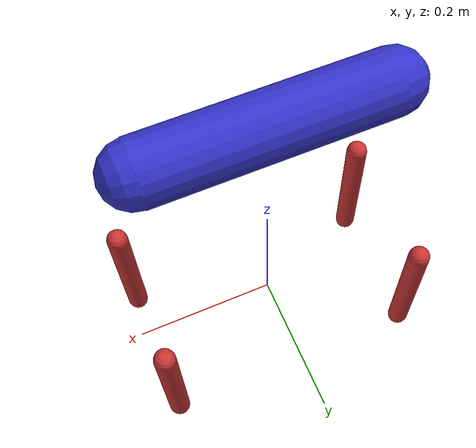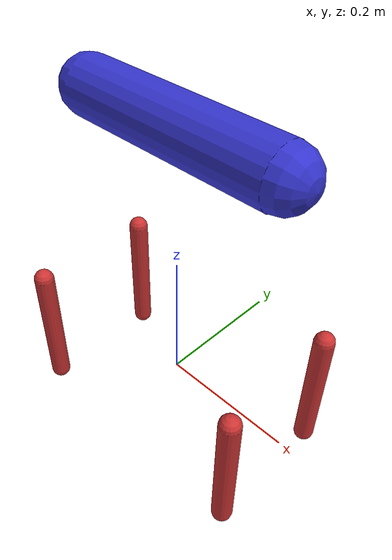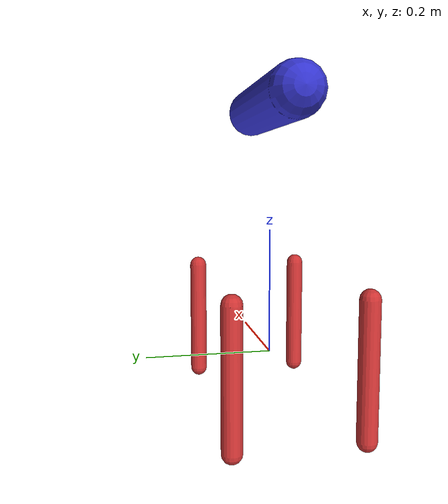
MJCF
<mujoco model="go2">
  <compiler angle="radian" meshdir="."/>
  <default>
    <joint armature="0.01" damping="0.1"/>
    <geom condim="3" margin="0.001"/>
  </default>
  <worldbody>
    <body name="base" pos="0 0 0.4">
      <inertial pos="0 0 0" mass="12.0" diaginertia="0.0355 0.0692 0.0804"/>
      <geom type="capsule" fromto="-0.15 0 0 0.15 0 0" size="0.04" rgba="0.2 0.2 0.8 1"/>
      <joint name="root_x" type="free" damping="0"/>

      <body name="FL_hip" pos="0.185 0.095 0">
        <inertial pos="0 0 0" mass="0.5" diaginertia="0.001 0.001 0.001"/>
        <joint name="FL_hip_joint" type="hinge" axis="1 0 0" range="-0.80 2.86" damping="0.5"/>
        <body name="FL_thigh" pos="0 0 -0.08">
          <inertial pos="0 0 -0.1" mass="1.0" diaginertia="0.005 0.005 0.001"/>
          <joint name="FL_thigh_joint" type="hinge" axis="0 1 0" range="-2.33 2.87" damping="0.8"/>
          <body name="FL_calf" pos="0 0 -0.2">
            <inertial pos="0 0 -0.1" mass="0.5" diaginertia="0.002 0.002 0.001"/>
            <joint name="FL_calf_joint" type="hinge" axis="0 1 0" range="-2.70 -0.46" damping="0.5"/>
            <geom type="capsule" fromto="0 0 0 0 0 -0.2" size="0.015" rgba="0.8 0.2 0.2 1"/>
          </body>
        </body>
      </body>

      <body name="FR_hip" pos="0.185 -0.095 0">
        <inertial pos="0 0 0" mass="0.5" diaginertia="0.001 0.001 0.001"/>
        <joint name="FR_hip_joint" type="hinge" axis="1 0 0" range="-0.80 2.86" damping="0.5"/>
        <body name="FR_thigh" pos="0 0 -0.08">
          <inertial pos="0 0 -0.1" mass="1.0" diaginertia="0.005 0.005 0.001"/>
          <joint name="FR_thigh_joint" type="hinge" axis="0 1 0" range="-2.33 2.87" damping="0.8"/>
          <body name="FR_calf" pos="0 0 -0.2">
            <inertial pos="0 0 -0.1" mass="0.5" diaginertia="0.002 0.002 0.001"/>
            <joint name="FR_calf_joint" type="hinge" axis="0 1 0" range="-2.70 -0.46" damping="0.5"/>
            <geom type="capsule" fromto="0 0 0 0 0 -0.2" size="0.015" rgba="0.8 0.2 0.2 1"/>
          </body>
        </body>
      </body>

      <body name="RL_hip" pos="-0.185 0.095 0">
        <inertial pos="0 0 0" mass="0.5" diaginertia="0.001 0.001 0.001"/>
        <joint name="RL_hip_joint" type="hinge" axis="1 0 0" range="-0.80 2.86" damping="0.5"/>
        <body name="RL_thigh" pos="0 0 -0.08">
          <inertial pos="0 0 -0.1" mass="1.0" diaginertia="0.005 0.005 0.001"/>
          <joint name="RL_thigh_joint" type="hinge" axis="0 1 0" range="-2.33 2.87" damping="0.8"/>
          <body name="RL_calf" pos="0 0 -0.2">
            <inertial pos="0 0 -0.1" mass="0.5" diaginertia="0.002 0.002 0.001"/>
            <joint name="RL_calf_joint" type="hinge" axis="0 1 0" range="-2.70 -0.46" damping="0.5"/>
            <geom type="capsule" fromto="0 0 0 0 0 -0.2" size="0.015" rgba="0.8 0.2 0.2 1"/>
          </body>
        </body>
      </body>

      <body name="RR_hip" pos="-0.185 -0.095 0">
        <inertial pos="0 0 0" mass="0.5" diaginertia="0.001 0.001 0.001"/>
        <joint name="RR_hip_joint" type="hinge" axis="1 0 0" range="-0.80 2.86" damping="0.5"/>
        <body name="RR_thigh" pos="0 0 -0.08">
          <inertial pos="0 0 -0.1" mass="1.0" diaginertia="0.005 0.005 0.001"/>
          <joint name="RR_thigh_joint" type="hinge" axis="0 1 0" range="-2.33 2.87" damping="0.8"/>
          <body name="RR_calf" pos="0 0 -0.2">
            <inertial pos="0 0 -0.1" mass="0.5" diaginertia="0.002 0.002 0.001"/>
            <joint name="RR_calf_joint" type="hinge" axis="0 1 0" range="-2.70 -0.46" damping="0.5"/>
            <geom type="capsule" fromto="0 0 0 0 0 -0.2" size="0.015" rgba="0.8 0.2 0.2 1"/>
          </body>
        </body>
      </body>
    </body>
  </worldbody>

  <actuator>
    <position joint="FL_hip_joint" kp="30" ctrlrange="-100 100"/>
    <position joint="FL_thigh_joint" kp="30" ctrlrange="-100 100"/>
    <position joint="FL_calf_joint" kp="30" ctrlrange="-100 100"/>
    <position joint="FR_hip_joint" kp="30" ctrlrange="-100 100"/>
    <position joint="FR_thigh_joint" kp="30" ctrlrange="-100 100"/>
    <position joint="FR_calf_joint" kp="30" ctrlrange="-100 100"/>
    <position joint="RL_hip_joint" kp="30" ctrlrange="-100 100"/>
    <position joint="RL_thigh_joint" kp="30" ctrlrange="-100 100"/>
    <position joint="RL_calf_joint" kp="30" ctrlrange="-100 100"/>
    <position joint="RR_hip_joint" kp="30" ctrlrange="-100 100"/>
    <position joint="RR_thigh_joint" kp="30" ctrlrange="-100 100"/>
    <position joint="RR_calf_joint" kp="30" ctrlrange="-100 100"/>
  </actuator>

  <sensor>
    <framequat objtype="body" objname="base" name="base_quat"/>
    <gyro objtype="body" objname="base" name="base_gyro"/>
    <accelerometer objtype="body" objname="base" name="base_acc"/>
  </sensor>
</mujoco>
